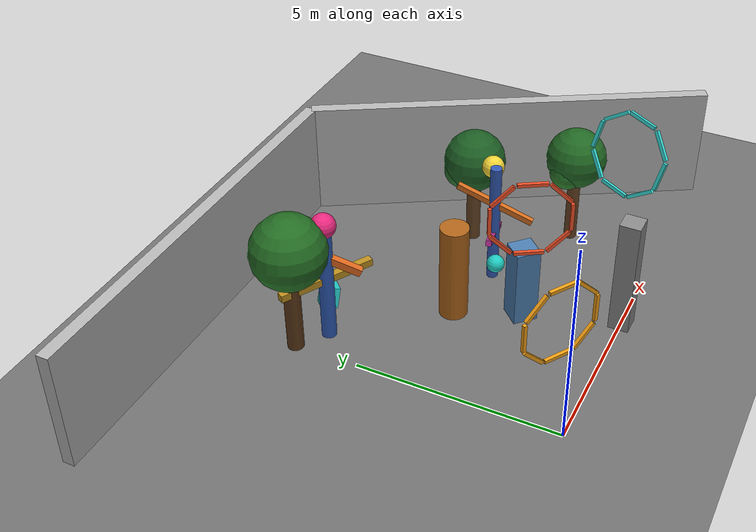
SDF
<sdf version="1.9">
 <world name="test">
  <model name="ground_plane">
   <static>true</static>
   <link name="link">
    <collision name="collision">
     <geometry><plane><normal>0 0 1</normal><size>100 100</size></plane></geometry>
    </collision>
    <visual name="visual">
     <geometry><plane><normal>0 0 1</normal><size>100 100</size></plane></geometry>
     <material>
      <lighting>true</lighting>
      <ambient>0.45 0.45 0.45 1</ambient>
      <diffuse>0.45 0.45 0.45 1</diffuse>
      <specular>0.0 0.0 0.0 1</specular>
     </material>
    </visual>
   </link>
  </model>
  <model name="wall_0">
   <static>true</static>
   <pose>0 9.0 1.5 0 0 0</pose>
   <link name="link">
    <collision name="c"><geometry><box><size>10.39 0.3 3.0</size></box></geometry></collision>
    <visual name="v"><geometry><box><size>10.39 0.3 3.0</size></box></geometry></visual>
   </link>
  </model>
  <model name="wall_5">
   <static>true</static>
   <pose>7.79 4.5 1.5 0 0 -1.0472</pose>
   <link name="link">
    <collision name="c"><geometry><box><size>10.39 0.3 3.0</size></box></geometry></collision>
    <visual name="v"><geometry><box><size>10.39 0.3 3.0</size></box></geometry></visual>
   </link>
  </model>
  <model name="obs_box_0">
   <static>true</static>
   <pose>4.0 0.0 1.5 0 0 0</pose>
   <link name="link">
    <collision name="c"><geometry><box><size>0.5 0.5 3.0</size></box></geometry></collision>
    <visual name="v">
     <geometry><box><size>0.5 0.5 3.0</size></box></geometry>
     <material><ambient>0.55 0.55 0.55 1</ambient><diffuse>0.55 0.55 0.55 1</diffuse></material>
    </visual>
   </link>
  </model>
  <model name="obs_cyl_0">
   <static>true</static>
   <pose>2.7 3.8 1.25 0 0 0</pose>
   <link name="link">
    <collision name="c">
     <geometry><cylinder><radius>0.35</radius><length>2.5</length></cylinder></geometry>
    </collision>
    <visual name="v">
     <geometry><cylinder><radius>0.35</radius><length>2.5</length></cylinder></geometry>
     <material><ambient>0.7 0.4 0.1 1</ambient><diffuse>0.7 0.4 0.1 1</diffuse></material>
    </visual>
   </link>
  </model>
  <model name="obs_box_5">
   <static>true</static>
   <pose>3.3 2.3 1.0 0 0 0.8</pose>
   <link name="link">
    <collision name="c"><geometry><box><size>0.6 0.6 2.0</size></box></geometry></collision>
    <visual name="v">
     <geometry><box><size>0.6 0.6 2.0</size></box></geometry>
     <material><ambient>0.3 0.5 0.7 1</ambient><diffuse>0.3 0.5 0.7 1</diffuse></material>
    </visual>
   </link>
  </model>
  <model name="tree_1">
   <static>true</static>
   <pose>5.7 4.6 0 0 0 -0.3</pose>
   <link name="link">
    <collision name="trunk">
     <pose>0 0 1.05 0 0 0</pose>
     <geometry><cylinder><radius>0.18</radius><length>2.1</length></cylinder></geometry>
    </collision>
    <collision name="canopy">
     <pose>0 0 2.35 0 0 0</pose>
     <geometry><sphere><radius>0.74</radius></sphere></geometry>
    </collision>
    <visual name="trunk_visual">
     <pose>0 0 1.05 0 0 0</pose>
     <geometry><cylinder><radius>0.18</radius><length>2.1</length></cylinder></geometry>
     <material><ambient>0.41 0.27 0.14 1</ambient><diffuse>0.41 0.27 0.14 1</diffuse></material>
    </visual>
    <visual name="canopy_visual">
     <pose>0 0 2.35 0 0 0</pose>
     <geometry><sphere><radius>0.78</radius></sphere></geometry>
     <material><ambient>0.11 0.37 0.14 1</ambient><diffuse>0.11 0.37 0.14 1</diffuse></material>
    </visual>
    <visual name="canopy_visual_side">
     <pose>-0.24 0.18 2.12 0 0 0</pose>
     <geometry><sphere><radius>0.48</radius></sphere></geometry>
     <material><ambient>0.16 0.44 0.18 1</ambient><diffuse>0.16 0.44 0.18 1</diffuse></material>
    </visual>
   </link>
  </model>
  <model name="tree_4">
   <static>true</static>
   <pose>0.0 6.6 0 0 0 0</pose>
   <link name="link">
    <collision name="trunk">
     <pose>0 0 1.25 0 0 0</pose>
     <geometry><cylinder><radius>0.2</radius><length>2.5</length></cylinder></geometry>
    </collision>
    <collision name="canopy">
     <pose>0 0 2.75 0 0 0</pose>
     <geometry><sphere><radius>0.86</radius></sphere></geometry>
    </collision>
    <visual name="trunk_visual">
     <pose>0 0 1.25 0 0 0</pose>
     <geometry><cylinder><radius>0.2</radius><length>2.5</length></cylinder></geometry>
     <material><ambient>0.37 0.22 0.1 1</ambient><diffuse>0.37 0.22 0.1 1</diffuse></material>
    </visual>
    <visual name="canopy_visual">
     <pose>0 0 2.75 0 0 0</pose>
     <geometry><sphere><radius>0.9</radius></sphere></geometry>
     <material><ambient>0.14 0.43 0.14 1</ambient><diffuse>0.14 0.43 0.14 1</diffuse></material>
    </visual>
    <visual name="canopy_visual_side">
     <pose>0.3 0.08 2.42 0 0 0</pose>
     <geometry><sphere><radius>0.54</radius></sphere></geometry>
     <material><ambient>0.18 0.5 0.18 1</ambient><diffuse>0.18 0.5 0.18 1</diffuse></material>
    </visual>
   </link>
  </model>
  <model name="tree_7">
   <static>true</static>
   <pose>6.8 2.3 0 0 0 0.25</pose>
   <link name="link">
    <collision name="trunk">
     <pose>0 0 1.12 0 0 0</pose>
     <geometry><cylinder><radius>0.16</radius><length>2.24</length></cylinder></geometry>
    </collision>
    <collision name="canopy">
     <pose>0 0 2.42 0 0 0</pose>
     <geometry><sphere><radius>0.72</radius></sphere></geometry>
    </collision>
    <visual name="trunk_visual">
     <pose>0 0 1.12 0 0 0</pose>
     <geometry><cylinder><radius>0.16</radius><length>2.24</length></cylinder></geometry>
     <material><ambient>0.41 0.27 0.14 1</ambient><diffuse>0.41 0.27 0.14 1</diffuse></material>
    </visual>
    <visual name="canopy_visual">
     <pose>0 0 2.42 0 0 0</pose>
     <geometry><sphere><radius>0.76</radius></sphere></geometry>
     <material><ambient>0.13 0.41 0.14 1</ambient><diffuse>0.13 0.41 0.14 1</diffuse></material>
    </visual>
    <visual name="canopy_visual_side">
     <pose>-0.26 0.18 2.16 0 0 0</pose>
     <geometry><sphere><radius>0.46</radius></sphere></geometry>
     <material><ambient>0.17 0.48 0.17 1</ambient><diffuse>0.17 0.48 0.17 1</diffuse></material>
    </visual>
    <visual name="canopy_visual_high">
     <pose>0.16 -0.18 2.72 0 0 0</pose>
     <geometry><sphere><radius>0.34</radius></sphere></geometry>
     <material><ambient>0.19 0.52 0.2 1</ambient><diffuse>0.19 0.52 0.2 1</diffuse></material>
    </visual>
   </link>
  </model>
  <model name="weird_cross_0">
   <static>true</static>
   <pose>0.7 6.1 0 0 0 0.4</pose>
   <link name="link">
    <collision name="spine">
     <pose>0 0 1.5 0 0 0</pose>
     <geometry><cylinder><radius>0.18</radius><length>3.0</length></cylinder></geometry>
    </collision>
    <collision name="arm_long">
     <pose>0 0 1.65 0 0 0.65</pose>
     <geometry><box><size>0.18 2.4 0.18</size></box></geometry>
    </collision>
    <collision name="arm_tilt">
     <pose>0 0 2.28 0.45 0 0</pose>
     <geometry><box><size>0.18 1.8 0.18</size></box></geometry>
    </collision>
    <collision name="lower_block">
     <pose>0.28 0 0.95 0.22 0.18 0.35</pose>
     <geometry><box><size>0.4 0.4 0.5</size></box></geometry>
    </collision>
    <collision name="top_orb">
     <pose>0 0 3.15 0 0 0</pose>
     <geometry><sphere><radius>0.3</radius></sphere></geometry>
    </collision>
    <visual name="spine_visual">
     <pose>0 0 1.5 0 0 0</pose>
     <geometry><cylinder><radius>0.18</radius><length>3.0</length></cylinder></geometry>
     <material><ambient>0.18 0.36 0.72 1</ambient><diffuse>0.18 0.36 0.72 1</diffuse></material>
    </visual>
    <visual name="arm_long_visual">
     <pose>0 0 1.65 0 0 0.65</pose>
     <geometry><box><size>0.18 2.4 0.18</size></box></geometry>
     <material><ambient>0.74 0.56 0.12 1</ambient><diffuse>0.74 0.56 0.12 1</diffuse></material>
    </visual>
    <visual name="arm_tilt_visual">
     <pose>0 0 2.28 0.45 0 0</pose>
     <geometry><box><size>0.18 1.8 0.18</size></box></geometry>
     <material><ambient>0.9 0.42 0.12 1</ambient><diffuse>0.9 0.42 0.12 1</diffuse></material>
    </visual>
    <visual name="lower_block_visual">
     <pose>0.28 0 0.95 0.22 0.18 0.35</pose>
     <geometry><box><size>0.4 0.4 0.5</size></box></geometry>
     <material><ambient>0.15 0.8 0.8 1</ambient><diffuse>0.15 0.8 0.8 1</diffuse></material>
    </visual>
    <visual name="top_orb_visual">
     <pose>0 0 3.15 0 0 0</pose>
     <geometry><sphere><radius>0.3</radius></sphere></geometry>
     <material><ambient>0.92 0.16 0.5 1</ambient><diffuse>0.92 0.16 0.5 1</diffuse></material>
    </visual>
   </link>
  </model>
  <model name="weird_orbit_0">
   <static>true</static>
   <pose>4.4 3.5 0 0 0 -0.45</pose>
   <link name="link">
    <collision name="spine">
     <pose>0 0 1.6 0 0 0</pose>
     <geometry><cylinder><radius>0.14</radius><length>3.2</length></cylinder></geometry>
    </collision>
    <collision name="arm_upper">
     <pose>0 0 2.18 0.4 0 0.65</pose>
     <geometry><box><size>0.14 2.0 0.14</size></box></geometry>
    </collision>
    <collision name="arm_lower">
     <pose>0 0 1.28 -0.32 0 -0.9</pose>
     <geometry><box><size>0.14 1.6 0.14</size></box></geometry>
    </collision>
    <collision name="orb_upper">
     <pose>0.58 0.74 2.62 0 0 0</pose>
     <geometry><sphere><radius>0.28</radius></sphere></geometry>
    </collision>
    <collision name="orb_lower">
     <pose>-0.44 -0.58 0.92 0 0 0</pose>
     <geometry><sphere><radius>0.22</radius></sphere></geometry>
    </collision>
    <visual name="spine_visual">
     <pose>0 0 1.6 0 0 0</pose>
     <geometry><cylinder><radius>0.14</radius><length>3.2</length></cylinder></geometry>
     <material><ambient>0.2 0.36 0.72 1</ambient><diffuse>0.2 0.36 0.72 1</diffuse></material>
    </visual>
    <visual name="arm_upper_visual">
     <pose>0 0 2.18 0.4 0 0.65</pose>
     <geometry><box><size>0.14 2.0 0.14</size></box></geometry>
     <material><ambient>0.86 0.44 0.12 1</ambient><diffuse>0.86 0.44 0.12 1</diffuse></material>
    </visual>
    <visual name="arm_lower_visual">
     <pose>0 0 1.28 -0.32 0 -0.9</pose>
     <geometry><box><size>0.14 1.6 0.14</size></box></geometry>
     <material><ambient>0.7 0.18 0.56 1</ambient><diffuse>0.7 0.18 0.56 1</diffuse></material>
    </visual>
    <visual name="orb_upper_visual">
     <pose>0.58 0.74 2.62 0 0 0</pose>
     <geometry><sphere><radius>0.28</radius></sphere></geometry>
     <material><ambient>0.96 0.84 0.22 1</ambient><diffuse>0.96 0.84 0.22 1</diffuse></material>
    </visual>
    <visual name="orb_lower_visual">
     <pose>-0.44 -0.58 0.92 0 0 0</pose>
     <geometry><sphere><radius>0.22</radius></sphere></geometry>
     <material><ambient>0.12 0.8 0.76 1</ambient><diffuse>0.12 0.8 0.76 1</diffuse></material>
    </visual>
   </link>
  </model>
  <model name="air_ring_1">
   <static>true</static>
   <pose>0.1 0.3 3.0 0 0 1.0</pose>
   <link name="link">
    <collision name="segment_0_collision">
     <pose>0 0.9 0 1.5708 0 0</pose>
     <geometry><box><size>0.08 0.68 0.08</size></box></geometry>
    </collision>
    <collision name="segment_1_collision">
     <pose>0 0.6364 0.6364 2.3562 0 0</pose>
     <geometry><box><size>0.08 0.68 0.08</size></box></geometry>
    </collision>
    <collision name="segment_2_collision">
     <pose>0 0 0.9 3.1416 0 0</pose>
     <geometry><box><size>0.08 0.68 0.08</size></box></geometry>
    </collision>
    <collision name="segment_3_collision">
     <pose>0 -0.6364 0.6364 -2.3562 0 0</pose>
     <geometry><box><size>0.08 0.68 0.08</size></box></geometry>
    </collision>
    <collision name="segment_4_collision">
     <pose>0 -0.9 0 -1.5708 0 0</pose>
     <geometry><box><size>0.08 0.68 0.08</size></box></geometry>
    </collision>
    <collision name="segment_5_collision">
     <pose>0 -0.6364 -0.6364 -0.7854 0 0</pose>
     <geometry><box><size>0.08 0.68 0.08</size></box></geometry>
    </collision>
    <collision name="segment_6_collision">
     <pose>0 0 -0.9 0 0 0</pose>
     <geometry><box><size>0.08 0.68 0.08</size></box></geometry>
    </collision>
    <collision name="segment_7_collision">
     <pose>0 0.6364 -0.6364 0.7854 0 0</pose>
     <geometry><box><size>0.08 0.68 0.08</size></box></geometry>
    </collision>
    <visual name="segment_0_visual">
     <pose>0 0.9 0 1.5708 0 0</pose>
     <geometry><box><size>0.08 0.68 0.08</size></box></geometry>
     <material>
      <ambient>0.96 0.63 0.08 1</ambient>
      <diffuse>0.96 0.63 0.08 1</diffuse>
      <emissive>0.15 0.08 0.0 1</emissive>
     </material>
    </visual>
    <visual name="segment_1_visual">
     <pose>0 0.6364 0.6364 2.3562 0 0</pose>
     <geometry><box><size>0.08 0.68 0.08</size></box></geometry>
     <material>
      <ambient>0.96 0.63 0.08 1</ambient>
      <diffuse>0.96 0.63 0.08 1</diffuse>
      <emissive>0.15 0.08 0.0 1</emissive>
     </material>
    </visual>
    <visual name="segment_2_visual">
     <pose>0 0 0.9 3.1416 0 0</pose>
     <geometry><box><size>0.08 0.68 0.08</size></box></geometry>
     <material>
      <ambient>0.96 0.63 0.08 1</ambient>
      <diffuse>0.96 0.63 0.08 1</diffuse>
      <emissive>0.15 0.08 0.0 1</emissive>
     </material>
    </visual>
    <visual name="segment_3_visual">
     <pose>0 -0.6364 0.6364 -2.3562 0 0</pose>
     <geometry><box><size>0.08 0.68 0.08</size></box></geometry>
     <material>
      <ambient>0.96 0.63 0.08 1</ambient>
      <diffuse>0.96 0.63 0.08 1</diffuse>
      <emissive>0.15 0.08 0.0 1</emissive>
     </material>
    </visual>
    <visual name="segment_4_visual">
     <pose>0 -0.9 0 -1.5708 0 0</pose>
     <geometry><box><size>0.08 0.68 0.08</size></box></geometry>
     <material>
      <ambient>0.96 0.63 0.08 1</ambient>
      <diffuse>0.96 0.63 0.08 1</diffuse>
      <emissive>0.15 0.08 0.0 1</emissive>
     </material>
    </visual>
    <visual name="segment_5_visual">
     <pose>0 -0.6364 -0.6364 -0.7854 0 0</pose>
     <geometry><box><size>0.08 0.68 0.08</size></box></geometry>
     <material>
      <ambient>0.96 0.63 0.08 1</ambient>
      <diffuse>0.96 0.63 0.08 1</diffuse>
      <emissive>0.15 0.08 0.0 1</emissive>
     </material>
    </visual>
    <visual name="segment_6_visual">
     <pose>0 0 -0.9 0 0 0</pose>
     <geometry><box><size>0.08 0.68 0.08</size></box></geometry>
     <material>
      <ambient>0.96 0.63 0.08 1</ambient>
      <diffuse>0.96 0.63 0.08 1</diffuse>
      <emissive>0.15 0.08 0.0 1</emissive>
     </material>
    </visual>
    <visual name="segment_7_visual">
     <pose>0 0.6364 -0.6364 0.7854 0 0</pose>
     <geometry><box><size>0.08 0.68 0.08</size></box></geometry>
     <material>
      <ambient>0.96 0.63 0.08 1</ambient>
      <diffuse>0.96 0.63 0.08 1</diffuse>
      <emissive>0.15 0.08 0.0 1</emissive>
     </material>
    </visual>
   </link>
  </model>
  <model name="air_ring_2">
   <static>true</static>
   <pose>2.2 1.8 3.7 0 0 0.55</pose>
   <link name="link">
    <collision name="segment_0_collision">
     <pose>0 0.9 0 1.5708 0 0</pose>
     <geometry><box><size>0.08 0.68 0.08</size></box></geometry>
    </collision>
    <collision name="segment_1_collision">
     <pose>0 0.6364 0.6364 2.3562 0 0</pose>
     <geometry><box><size>0.08 0.68 0.08</size></box></geometry>
    </collision>
    <collision name="segment_2_collision">
     <pose>0 0 0.9 3.1416 0 0</pose>
     <geometry><box><size>0.08 0.68 0.08</size></box></geometry>
    </collision>
    <collision name="segment_3_collision">
     <pose>0 -0.6364 0.6364 -2.3562 0 0</pose>
     <geometry><box><size>0.08 0.68 0.08</size></box></geometry>
    </collision>
    <collision name="segment_4_collision">
     <pose>0 -0.9 0 -1.5708 0 0</pose>
     <geometry><box><size>0.08 0.68 0.08</size></box></geometry>
    </collision>
    <collision name="segment_5_collision">
     <pose>0 -0.6364 -0.6364 -0.7854 0 0</pose>
     <geometry><box><size>0.08 0.68 0.08</size></box></geometry>
    </collision>
    <collision name="segment_6_collision">
     <pose>0 0 -0.9 0 0 0</pose>
     <geometry><box><size>0.08 0.68 0.08</size></box></geometry>
    </collision>
    <collision name="segment_7_collision">
     <pose>0 0.6364 -0.6364 0.7854 0 0</pose>
     <geometry><box><size>0.08 0.68 0.08</size></box></geometry>
    </collision>
    <visual name="segment_0_visual">
     <pose>0 0.9 0 1.5708 0 0</pose>
     <geometry><box><size>0.08 0.68 0.08</size></box></geometry>
     <material>
      <ambient>0.98 0.32 0.16 1</ambient>
      <diffuse>0.98 0.32 0.16 1</diffuse>
      <emissive>0.18 0.04 0.02 1</emissive>
     </material>
    </visual>
    <visual name="segment_1_visual">
     <pose>0 0.6364 0.6364 2.3562 0 0</pose>
     <geometry><box><size>0.08 0.68 0.08</size></box></geometry>
     <material>
      <ambient>0.98 0.32 0.16 1</ambient>
      <diffuse>0.98 0.32 0.16 1</diffuse>
      <emissive>0.18 0.04 0.02 1</emissive>
     </material>
    </visual>
    <visual name="segment_2_visual">
     <pose>0 0 0.9 3.1416 0 0</pose>
     <geometry><box><size>0.08 0.68 0.08</size></box></geometry>
     <material>
      <ambient>0.98 0.32 0.16 1</ambient>
      <diffuse>0.98 0.32 0.16 1</diffuse>
      <emissive>0.18 0.04 0.02 1</emissive>
     </material>
    </visual>
    <visual name="segment_3_visual">
     <pose>0 -0.6364 0.6364 -2.3562 0 0</pose>
     <geometry><box><size>0.08 0.68 0.08</size></box></geometry>
     <material>
      <ambient>0.98 0.32 0.16 1</ambient>
      <diffuse>0.98 0.32 0.16 1</diffuse>
      <emissive>0.18 0.04 0.02 1</emissive>
     </material>
    </visual>
    <visual name="segment_4_visual">
     <pose>0 -0.9 0 -1.5708 0 0</pose>
     <geometry><box><size>0.08 0.68 0.08</size></box></geometry>
     <material>
      <ambient>0.98 0.32 0.16 1</ambient>
      <diffuse>0.98 0.32 0.16 1</diffuse>
      <emissive>0.18 0.04 0.02 1</emissive>
     </material>
    </visual>
    <visual name="segment_5_visual">
     <pose>0 -0.6364 -0.6364 -0.7854 0 0</pose>
     <geometry><box><size>0.08 0.68 0.08</size></box></geometry>
     <material>
      <ambient>0.98 0.32 0.16 1</ambient>
      <diffuse>0.98 0.32 0.16 1</diffuse>
      <emissive>0.18 0.04 0.02 1</emissive>
     </material>
    </visual>
    <visual name="segment_6_visual">
     <pose>0 0 -0.9 0 0 0</pose>
     <geometry><box><size>0.08 0.68 0.08</size></box></geometry>
     <material>
      <ambient>0.98 0.32 0.16 1</ambient>
      <diffuse>0.98 0.32 0.16 1</diffuse>
      <emissive>0.18 0.04 0.02 1</emissive>
     </material>
    </visual>
    <visual name="segment_7_visual">
     <pose>0 0.6364 -0.6364 0.7854 0 0</pose>
     <geometry><box><size>0.08 0.68 0.08</size></box></geometry>
     <material>
      <ambient>0.98 0.32 0.16 1</ambient>
      <diffuse>0.98 0.32 0.16 1</diffuse>
      <emissive>0.18 0.04 0.02 1</emissive>
     </material>
    </visual>
   </link>
  </model>
  <model name="air_ring_3">
   <static>true</static>
   <pose>4.4 0.4 4.45 0.16 0.22 -0.35</pose>
   <link name="link">
    <collision name="segment_0_collision">
     <pose>0 0.9 0 1.5708 0 0</pose>
     <geometry><box><size>0.08 0.68 0.08</size></box></geometry>
    </collision>
    <collision name="segment_1_collision">
     <pose>0 0.6364 0.6364 2.3562 0 0</pose>
     <geometry><box><size>0.08 0.68 0.08</size></box></geometry>
    </collision>
    <collision name="segment_2_collision">
     <pose>0 0 0.9 3.1416 0 0</pose>
     <geometry><box><size>0.08 0.68 0.08</size></box></geometry>
    </collision>
    <collision name="segment_3_collision">
     <pose>0 -0.6364 0.6364 -2.3562 0 0</pose>
     <geometry><box><size>0.08 0.68 0.08</size></box></geometry>
    </collision>
    <collision name="segment_4_collision">
     <pose>0 -0.9 0 -1.5708 0 0</pose>
     <geometry><box><size>0.08 0.68 0.08</size></box></geometry>
    </collision>
    <collision name="segment_5_collision">
     <pose>0 -0.6364 -0.6364 -0.7854 0 0</pose>
     <geometry><box><size>0.08 0.68 0.08</size></box></geometry>
    </collision>
    <collision name="segment_6_collision">
     <pose>0 0 -0.9 0 0 0</pose>
     <geometry><box><size>0.08 0.68 0.08</size></box></geometry>
    </collision>
    <collision name="segment_7_collision">
     <pose>0 0.6364 -0.6364 0.7854 0 0</pose>
     <geometry><box><size>0.08 0.68 0.08</size></box></geometry>
    </collision>
    <visual name="segment_0_visual">
     <pose>0 0.9 0 1.5708 0 0</pose>
     <geometry><box><size>0.08 0.68 0.08</size></box></geometry>
     <material>
      <ambient>0.22 0.88 0.86 1</ambient>
      <diffuse>0.22 0.88 0.86 1</diffuse>
      <emissive>0.04 0.16 0.16 1</emissive>
     </material>
    </visual>
    <visual name="segment_1_visual">
     <pose>0 0.6364 0.6364 2.3562 0 0</pose>
     <geometry><box><size>0.08 0.68 0.08</size></box></geometry>
     <material>
      <ambient>0.22 0.88 0.86 1</ambient>
      <diffuse>0.22 0.88 0.86 1</diffuse>
      <emissive>0.04 0.16 0.16 1</emissive>
     </material>
    </visual>
    <visual name="segment_2_visual">
     <pose>0 0 0.9 3.1416 0 0</pose>
     <geometry><box><size>0.08 0.68 0.08</size></box></geometry>
     <material>
      <ambient>0.22 0.88 0.86 1</ambient>
      <diffuse>0.22 0.88 0.86 1</diffuse>
      <emissive>0.04 0.16 0.16 1</emissive>
     </material>
    </visual>
    <visual name="segment_3_visual">
     <pose>0 -0.6364 0.6364 -2.3562 0 0</pose>
     <geometry><box><size>0.08 0.68 0.08</size></box></geometry>
     <material>
      <ambient>0.22 0.88 0.86 1</ambient>
      <diffuse>0.22 0.88 0.86 1</diffuse>
      <emissive>0.04 0.16 0.16 1</emissive>
     </material>
    </visual>
    <visual name="segment_4_visual">
     <pose>0 -0.9 0 -1.5708 0 0</pose>
     <geometry><box><size>0.08 0.68 0.08</size></box></geometry>
     <material>
      <ambient>0.22 0.88 0.86 1</ambient>
      <diffuse>0.22 0.88 0.86 1</diffuse>
      <emissive>0.04 0.16 0.16 1</emissive>
     </material>
    </visual>
    <visual name="segment_5_visual">
     <pose>0 -0.6364 -0.6364 -0.7854 0 0</pose>
     <geometry><box><size>0.08 0.68 0.08</size></box></geometry>
     <material>
      <ambient>0.22 0.88 0.86 1</ambient>
      <diffuse>0.22 0.88 0.86 1</diffuse>
      <emissive>0.04 0.16 0.16 1</emissive>
     </material>
    </visual>
    <visual name="segment_6_visual">
     <pose>0 0 -0.9 0 0 0</pose>
     <geometry><box><size>0.08 0.68 0.08</size></box></geometry>
     <material>
      <ambient>0.22 0.88 0.86 1</ambient>
      <diffuse>0.22 0.88 0.86 1</diffuse>
      <emissive>0.04 0.16 0.16 1</emissive>
     </material>
    </visual>
    <visual name="segment_7_visual">
     <pose>0 0.6364 -0.6364 0.7854 0 0</pose>
     <geometry><box><size>0.08 0.68 0.08</size></box></geometry>
     <material>
      <ambient>0.22 0.88 0.86 1</ambient>
      <diffuse>0.22 0.88 0.86 1</diffuse>
      <emissive>0.04 0.16 0.16 1</emissive>
     </material>
    </visual>
   </link>
  </model>
 </world>
</sdf>
